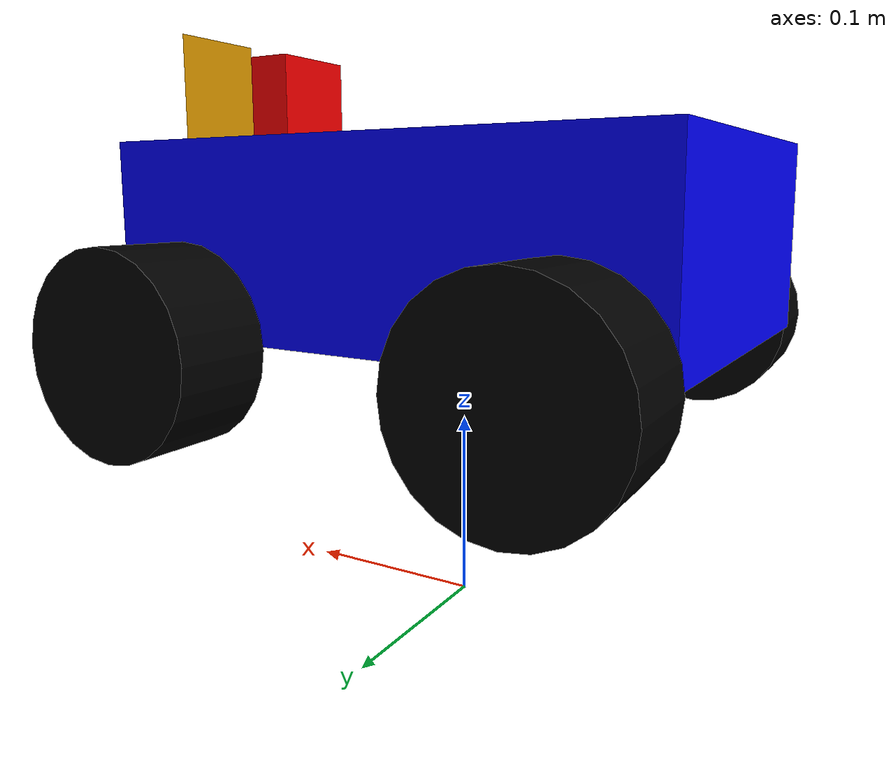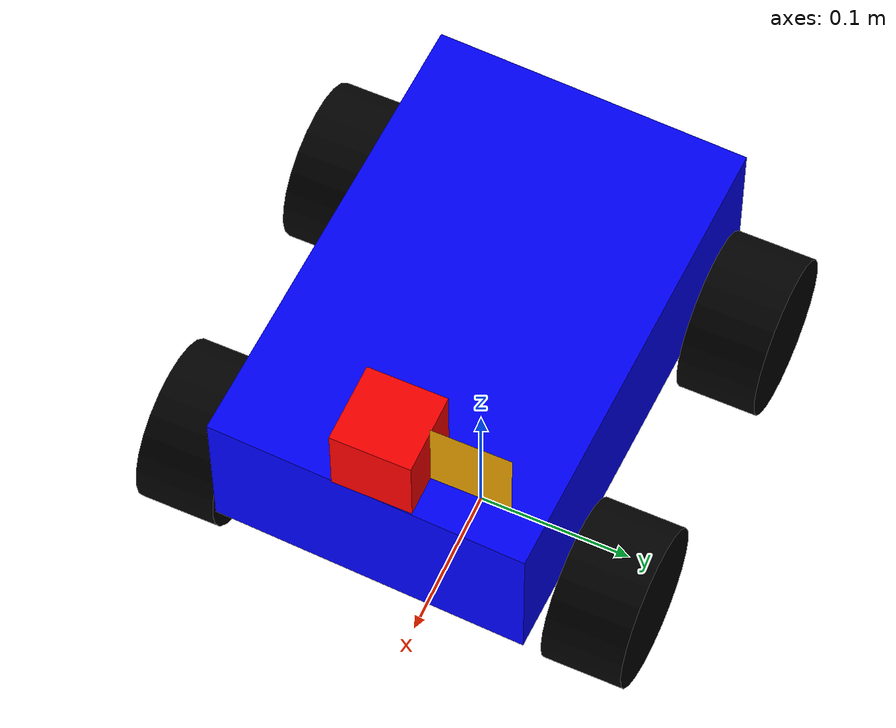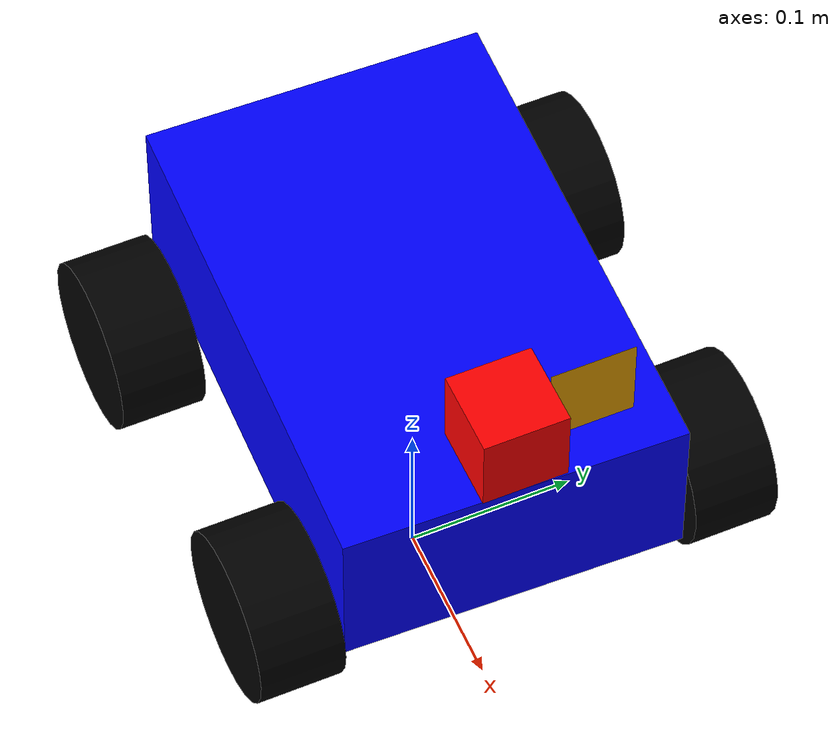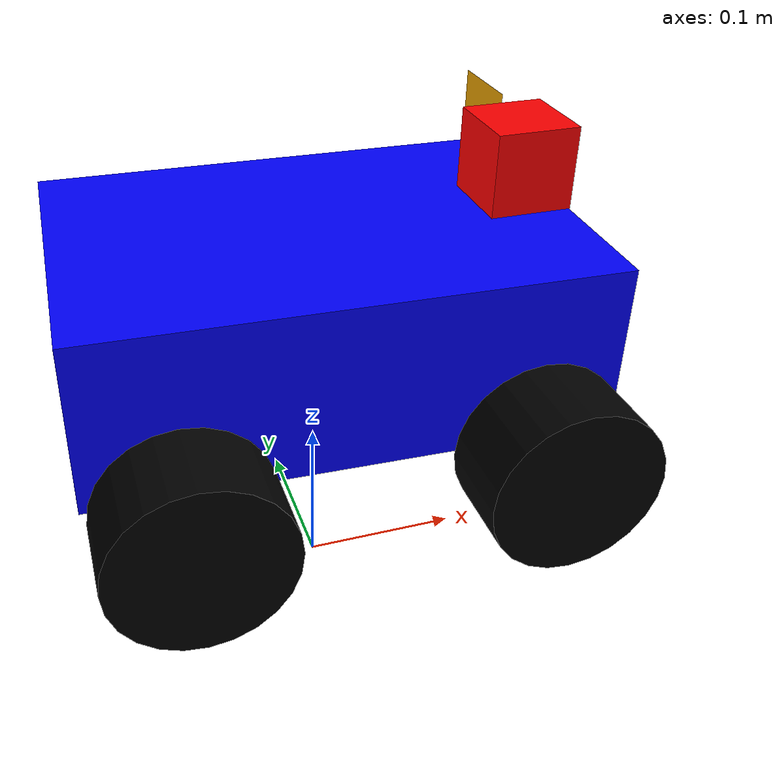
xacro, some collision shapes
<?xml version="1.0"?>

<robot xmlns:xacro="http://www.ros.org/wiki/xacro" name="slam_bot">

    <!--The robot has been inspired from Robot-Operating-System-Cookbook
        and modified and developed for this project. -->

    <xacro:property name="base_mass" value="5"/> <!-- in kg-->
    <xacro:property name="base_x_size" value="0.2"/>
    <xacro:property name="base_y_size" value="0.3"/>
    <xacro:property name="base_z_size" value="0.1"/>

    <!-- Wheels -->
    <xacro:property name="wheel_mass" value="1"/> <!-- in kg-->

    <xacro:property name="length_wheel" value="0.05"/>
    <xacro:property name="radius_wheel" value="0.05"/>
    <xacro:property name="camera_link" value="0.05"/>
    <xacro:macro name="default_inertial" params="mass">
        <inertial>
            <mass value="${mass}"/>
            <inertia ixx="1.0" ixy="0.0" ixz="0.0"
                     iyy="1.0" iyz="0.0"
                     izz="1.0"/>
        </inertial>
    </xacro:macro>

    <macro name="box_inertia" params="m x y z">
        <inertia ixx="${m*(y*y+z*z)/12}" ixy="0" ixz="0"
                 iyy="${m*(x*x+z*z)/12}" iyz="0"
                 izz="${m*(x*x+z*z)/12}"/>
    </macro>

    <macro name="cylinder_inertia" params="m r h">
        <inertia ixx="${m*(3*r*r+h*h)/12}" ixy="0" ixz="0"
                 iyy="${m*(3*r*r+h*h)/12}" iyz="0"
                 izz="${m*r*r/2}"/>
    </macro>

    <link name="robot_footprint">
        <visual>
            <geometry>
                <box size="0.001 0.001 0.001"/>
            </geometry>
            <origin rpy="0 0 0" xyz="0 0 0"/>
        </visual>
    </link>
    <xacro:include filename="$(find slam_project)/urdf/slam_bot.gazebo"/>

    <joint name="robot_footprint_joint" type="fixed">
        <origin xyz="0 0 0.15"/>
        <parent link="robot_footprint"/>
        <child link="chassis"/>
    </joint>

    <link name="chassis">
        <visual>
            <geometry>
                <box size="${base_x_size} ${base_y_size} ${base_z_size}"/>
            </geometry>
            <origin rpy="0 0 1.54" xyz="0 0 0.05"/>
            <material name="blue">
                <color rgba="0 0 1 1"/>
            </material>
        </visual>
        <collision>
            <geometry>
                <box size="${base_x_size} ${base_y_size} ${base_z_size}"/>
            </geometry>
        </collision>
        <inertial>
            <mass value="${base_mass}"/>
            <origin xyz="0 0 0"/>
            <!--The 3x3 rotational inertia matrix. -->
            <box_inertia m="${base_mass}" x="${base_x_size}" y="${base_y_size}" z="${base_z_size}"/>
        </inertial>

    </link>

    <link name="left_front_wheel">
        <visual>
            <geometry>
                <cylinder length="${length_wheel}" radius="${radius_wheel}"/>
            </geometry>
            <origin rpy="0 0 0" xyz="0 0 0"/>
            <material name="black">
                <color rgba="0 0 0 1"/>
            </material>
        </visual>
        <collision>
            <geometry>
                <cylinder length="${length_wheel}" radius="${radius_wheel}"/>
            </geometry>
        </collision>

        <inertial>
            <mass value="${wheel_mass}"/>
            <origin xyz="0 0 0"/>
            <cylinder_inertia m="${wheel_mass}" r="${radius_wheel}" h="${length_wheel}"/>
        </inertial>

    </link>

    <link name="left_rear_wheel">
        <visual>
            <geometry>
                <cylinder length="${length_wheel}" radius="${radius_wheel}"/>
            </geometry>
            <origin rpy="0 0 0" xyz="0 0 0"/>
            <material name="black"/>
        </visual>
        <collision>
            <geometry>
                <cylinder length="${length_wheel}" radius="${radius_wheel}"/>
            </geometry>
        </collision>
        <inertial>
            <mass value="${wheel_mass}"/>
            <origin xyz="0 0 0"/>
            <cylinder_inertia m="${wheel_mass}" r="${radius_wheel}" h="${length_wheel}"/>
        </inertial>

    </link>

    <link name="right_front_wheel">
        <visual>
            <geometry>
                <cylinder length="${length_wheel}" radius="${radius_wheel}"/>
            </geometry>
            <origin rpy="0 0 0" xyz="0 0 0"/>
            <material name="black"/>
        </visual>
        <collision>
            <geometry>
                <cylinder length="${length_wheel}" radius="${radius_wheel}"/>
            </geometry>
        </collision>
        <inertial>
            <mass value="${wheel_mass}"/>
            <origin xyz="0 0 0"/>
            <cylinder_inertia m="${wheel_mass}" r="${radius_wheel}" h="${length_wheel}"/>
        </inertial>
    </link>

    <link name="right_rear_wheel">
        <visual>
            <geometry>
                <cylinder length="${length_wheel}" radius="${radius_wheel}"/>
            </geometry>
            <origin rpy="0 0 0" xyz="0 0 0"/>
            <material name="black"/>
        </visual>
        <collision>
            <geometry>
                <cylinder length="${length_wheel}" radius="${radius_wheel}"/>
            </geometry>
        </collision>
        <inertial>
            <mass value="${wheel_mass}"/>
            <origin xyz="0 0 0"/>
            <cylinder_inertia m="${wheel_mass}" r="${radius_wheel}" h="${length_wheel}"/>
        </inertial>

    </link>

    <joint name="left_front" type="continuous">
        <parent link="chassis"/>
        <child link="left_front_wheel"/>
        <origin rpy="-1.5707 0 0" xyz="0.1 0.13 0"/>
        <axis xyz="0 0 1"/>
    </joint>

    <joint name="left_rear" type="continuous">
        <axis xyz="0 0 1"/>
        <anchor xyz="0 0 0"/>
        <limit effort="100" velocity="100"/>
        <parent link="chassis"/>
        <child link="left_rear_wheel"/>
        <origin rpy="-1.5707 0 0" xyz="-0.1 0.13 0"/>
    </joint>

    <joint name="right_front" type="continuous">
        <parent link="chassis"/>
        <axis xyz="0 0 1"/>
        <child link="right_front_wheel"/>
        <origin rpy="-1.5707 0 0" xyz="0.1 -0.13 0"/>
    </joint>

    <joint name="right_rear" type="continuous">
        <parent link="chassis"/>
        <axis xyz="0 0 1"/>
        <child link="right_rear_wheel"/>
        <origin rpy="-1.5707 0 0" xyz="-0.1 -0.13 0"/>
    </joint>

    <!-- Camera link -->
    <joint name="camera_joint" type="fixed">
        <origin xyz="0.125 0 0.125" rpy="0 0 0"/>
        <parent link="chassis"/>
        <child link="camera"/>
    </joint>

    <!-- Camera -->
    <link name="camera">
        <collision>
            <origin xyz="0 0 0" rpy="0 0 0"/>
            <geometry>
                <box size="0.05 0.05 0.05"/>
            </geometry>
        </collision>

        <visual>
            <origin xyz="0 0 0" rpy="0 0 0"/>
            <geometry>
                <box size="0.05 0.05 0.05"/>
            </geometry>
            <material name="red">
                <color rgba="1 0 0 1"/>
            </material>
        </visual>

        <inertial>
            <mass value="1e-5"/>
            <origin xyz="0 0 0" rpy="0 0 0"/>
            <inertia ixx="1e-6" ixy="0" ixz="0" iyy="1e-6" iyz="0" izz="1e-6"/>
        </inertial>
    </link>

    <link name="camera_rgbd_frame"/>

    <joint name="camera_rgbd_joint" type="fixed">
        <origin xyz="0 0 0" rpy="-1.5707 0 -1.5707"/>
        <parent link="camera"/>
        <child link="camera_rgbd_frame"/>
    </joint>

    <!-- Hokuyo joint -->
    <joint name="hokuyo_joint" type="fixed">
        <origin xyz="0.125 0.05 0.125" rpy="0 0 0"/>
        <parent link="chassis"/>
        <child link="hokuyo"/>
    </joint>

    <!-- Hokuyo Laser -->
    <link name="hokuyo">
        <collision>
            <origin xyz="0 0 0" rpy="0 0 0"/>
            <geometry>
                <box size="0.0 -0.05 0.06"/>
            </geometry>
        </collision>

        <visual>
            <origin xyz="0 -0.05 0.06" rpy="0 0 0"/>
            <geometry>
                <mesh filename="package://slam_project/meshes/hokuyo.dae"/>
            </geometry>
        </visual>

        <inertial>
            <mass value="1e-5"/>
            <origin xyz="0 0 0" rpy="0 0 0"/>
            <inertia ixx="1e-6" ixy="0" ixz="0" iyy="1e-6" iyz="0" izz="1e-6"/>
        </inertial>
    </link>

</robot>
